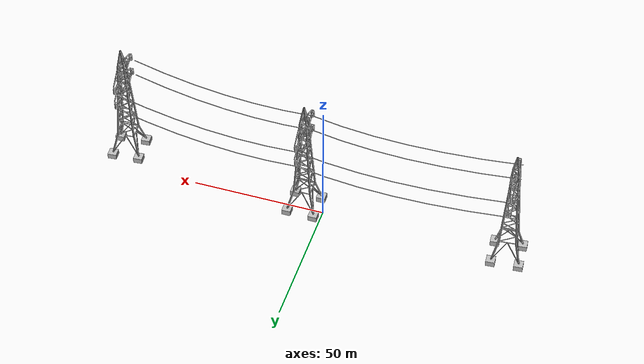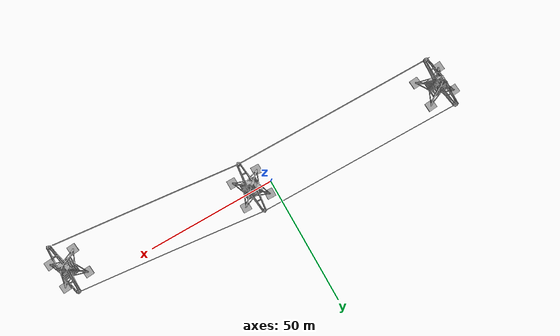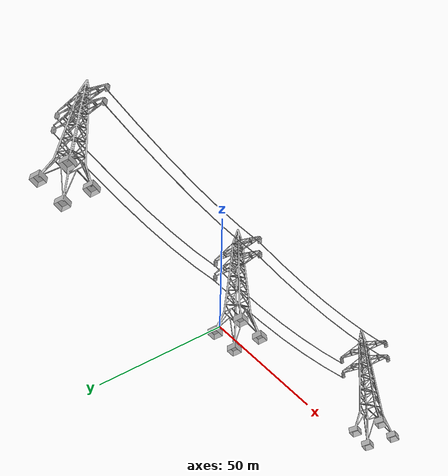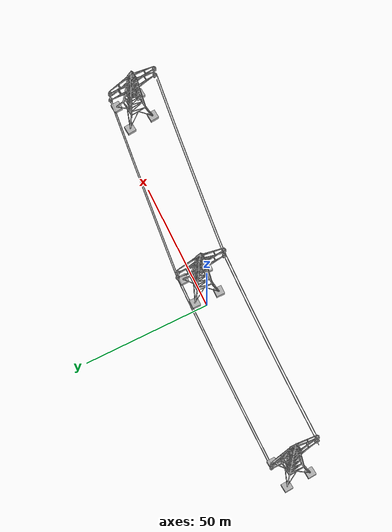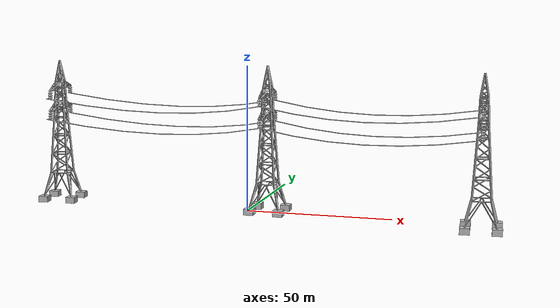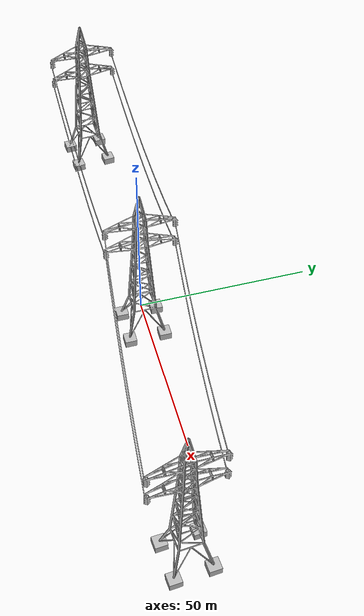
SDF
<?xml version="1.0" ?>
<sdf version="1.5">
  <model name="PowerPylons">
    <link name="link">
      <inertial>
      <pose>0 0 0.0175 0 0 0</pose>
        <mass>0.1</mass>
	  <inertia>
	    <ixx>0.000250308</ixx>
	    <ixy>0.0</ixy>
	    <ixz>0.0</ixz>
	    <iyy>0.000250308</iyy>
	    <iyz>0.0</iyz>
	    <izz>0.0004802</izz>
	  </inertia>
      </inertial>
      <collision name="collision">
        <pose>0 0 0.0175 0 0 0</pose>
        <geometry>
          <cylinder>
            <radius>0.098</radius>
            <length>0.035</length>
          </cylinder>
        </geometry>
      </collision>
      <visual name="visual">
        <geometry>
          <mesh>
            <uri>model://PowerPylons/meshes/50M_towers.dae</uri>
          </mesh>
        </geometry>
      </visual>
    </link>
  </model>
</sdf>
